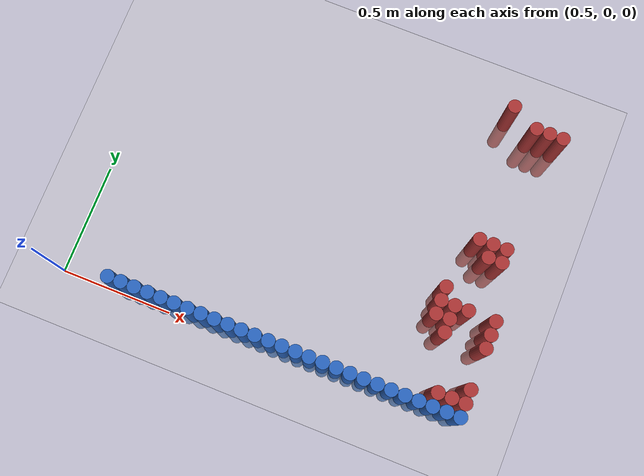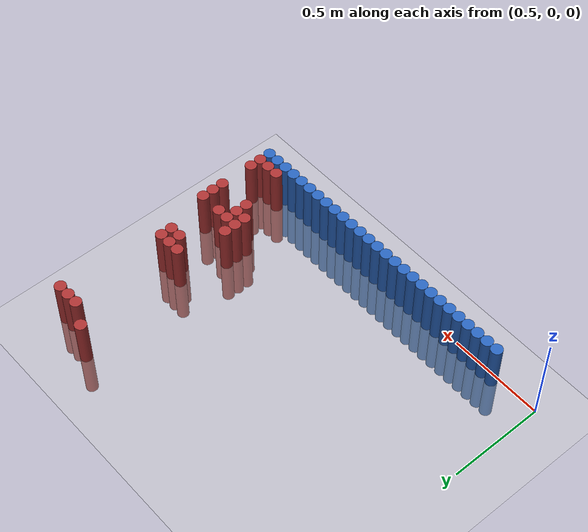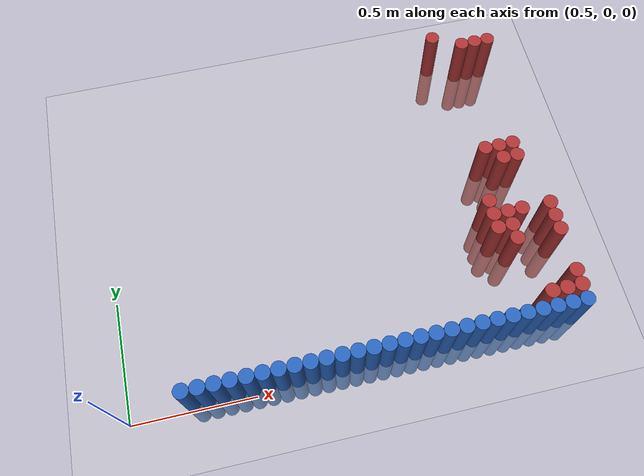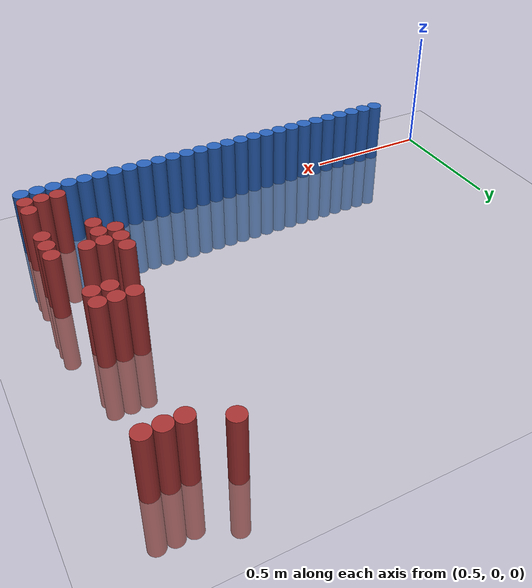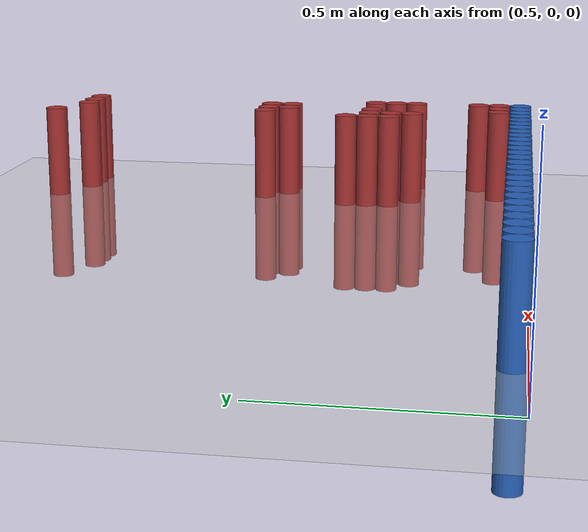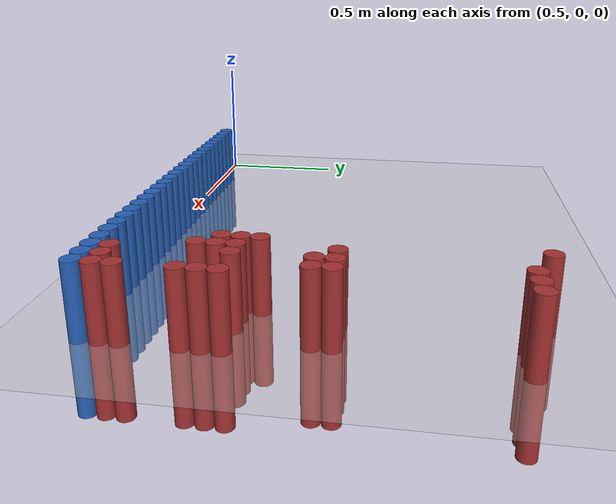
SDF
<sdf version="1.6">
 <world name="default">
  <model name="ground_plane">
   <static>1</static>
   <link name="link">
    <collision name="collision">
     <geometry><plane><normal>0 0 1</normal><size>100 100</size></plane></geometry>
     <surface><friction><ode><mu>100</mu><mu2>50</mu2></ode></friction></surface>
    </collision>
    <visual name="visual">
     <cast_shadows>0</cast_shadows>
     <geometry><plane><normal>0 0 1</normal><size>100 100</size></plane></geometry>
     <material>
      <script><uri>file://media/materials/scripts/gazebo.material</uri><name>Gazebo/Grey</name></script>
     </material>
    </visual>
   </link>
  </model>
  <model name="unit_cylinder_51">
   <static>1</static>
   <pose>0.750000 0.030000 0.000000 0.000000 0.000000 0.000000</pose>
   <link name="link">
    <inertial>
     <mass>1</mass>
     <inertia><ixx>0.145833</ixx><ixy>0</ixy><ixz>0</ixz><iyy>0.145833</iyy><iyz>0</iyz><izz>0.125</izz></inertia>
    </inertial>
    <collision name="collision">
     <geometry><cylinder><radius>0.030000</radius><length>0.5</length></cylinder></geometry>
    </collision>
    <visual name="visual">
     <geometry><cylinder><radius>0.030000</radius><length>0.5</length></cylinder></geometry>
     <material>
      <ambient>0.152000 0.379000 0.720000 1</ambient>
      <diffuse>0.152000 0.379000 0.720000 1</diffuse>
     </material>
     <material>
      <script><name>Gazebo/Grey</name><uri>file://media/materials/scripts/gazebo.material</uri></script>
     </material>
    </visual>
   </link>
  </model>
  <model name="unit_cylinder_53">
   <static>1</static>
   <pose>0.810000 0.030000 0.000000 0.000000 0.000000 0.000000</pose>
   <link name="link">
    <inertial>
     <mass>1</mass>
     <inertia><ixx>0.145833</ixx><ixy>0</ixy><ixz>0</ixz><iyy>0.145833</iyy><iyz>0</iyz><izz>0.125</izz></inertia>
    </inertial>
    <collision name="collision">
     <geometry><cylinder><radius>0.030000</radius><length>0.5</length></cylinder></geometry>
    </collision>
    <visual name="visual">
     <geometry><cylinder><radius>0.030000</radius><length>0.5</length></cylinder></geometry>
     <material>
      <ambient>0.152000 0.379000 0.720000 1</ambient>
      <diffuse>0.152000 0.379000 0.720000 1</diffuse>
     </material>
     <material>
      <script><name>Gazebo/Grey</name><uri>file://media/materials/scripts/gazebo.material</uri></script>
     </material>
    </visual>
   </link>
  </model>
  <model name="unit_cylinder_55">
   <static>1</static>
   <pose>0.870000 0.030000 0.000000 0.000000 0.000000 0.000000</pose>
   <link name="link">
    <inertial>
     <mass>1</mass>
     <inertia><ixx>0.145833</ixx><ixy>0</ixy><ixz>0</ixz><iyy>0.145833</iyy><iyz>0</iyz><izz>0.125</izz></inertia>
    </inertial>
    <collision name="collision">
     <geometry><cylinder><radius>0.030000</radius><length>0.5</length></cylinder></geometry>
    </collision>
    <visual name="visual">
     <geometry><cylinder><radius>0.030000</radius><length>0.5</length></cylinder></geometry>
     <material>
      <ambient>0.152000 0.379000 0.720000 1</ambient>
      <diffuse>0.152000 0.379000 0.720000 1</diffuse>
     </material>
     <material>
      <script><name>Gazebo/Grey</name><uri>file://media/materials/scripts/gazebo.material</uri></script>
     </material>
    </visual>
   </link>
  </model>
  <model name="unit_cylinder_57">
   <static>1</static>
   <pose>0.930000 0.030000 0.000000 0.000000 0.000000 0.000000</pose>
   <link name="link">
    <inertial>
     <mass>1</mass>
     <inertia><ixx>0.145833</ixx><ixy>0</ixy><ixz>0</ixz><iyy>0.145833</iyy><iyz>0</iyz><izz>0.125</izz></inertia>
    </inertial>
    <collision name="collision">
     <geometry><cylinder><radius>0.030000</radius><length>0.5</length></cylinder></geometry>
    </collision>
    <visual name="visual">
     <geometry><cylinder><radius>0.030000</radius><length>0.5</length></cylinder></geometry>
     <material>
      <ambient>0.152000 0.379000 0.720000 1</ambient>
      <diffuse>0.152000 0.379000 0.720000 1</diffuse>
     </material>
     <material>
      <script><name>Gazebo/Grey</name><uri>file://media/materials/scripts/gazebo.material</uri></script>
     </material>
    </visual>
   </link>
  </model>
  <model name="unit_cylinder_59">
   <static>1</static>
   <pose>0.990000 0.030000 0.000000 0.000000 0.000000 0.000000</pose>
   <link name="link">
    <inertial>
     <mass>1</mass>
     <inertia><ixx>0.145833</ixx><ixy>0</ixy><ixz>0</ixz><iyy>0.145833</iyy><iyz>0</iyz><izz>0.125</izz></inertia>
    </inertial>
    <collision name="collision">
     <geometry><cylinder><radius>0.030000</radius><length>0.5</length></cylinder></geometry>
    </collision>
    <visual name="visual">
     <geometry><cylinder><radius>0.030000</radius><length>0.5</length></cylinder></geometry>
     <material>
      <ambient>0.152000 0.379000 0.720000 1</ambient>
      <diffuse>0.152000 0.379000 0.720000 1</diffuse>
     </material>
     <material>
      <script><name>Gazebo/Grey</name><uri>file://media/materials/scripts/gazebo.material</uri></script>
     </material>
    </visual>
   </link>
  </model>
  <model name="unit_cylinder_61">
   <static>1</static>
   <pose>1.050000 0.030000 0.000000 0.000000 0.000000 0.000000</pose>
   <link name="link">
    <inertial>
     <mass>1</mass>
     <inertia><ixx>0.145833</ixx><ixy>0</ixy><ixz>0</ixz><iyy>0.145833</iyy><iyz>0</iyz><izz>0.125</izz></inertia>
    </inertial>
    <collision name="collision">
     <geometry><cylinder><radius>0.030000</radius><length>0.5</length></cylinder></geometry>
    </collision>
    <visual name="visual">
     <geometry><cylinder><radius>0.030000</radius><length>0.5</length></cylinder></geometry>
     <material>
      <ambient>0.152000 0.379000 0.720000 1</ambient>
      <diffuse>0.152000 0.379000 0.720000 1</diffuse>
     </material>
     <material>
      <script><name>Gazebo/Grey</name><uri>file://media/materials/scripts/gazebo.material</uri></script>
     </material>
    </visual>
   </link>
  </model>
  <model name="unit_cylinder_63">
   <static>1</static>
   <pose>1.110000 0.030000 0.000000 0.000000 0.000000 0.000000</pose>
   <link name="link">
    <inertial>
     <mass>1</mass>
     <inertia><ixx>0.145833</ixx><ixy>0</ixy><ixz>0</ixz><iyy>0.145833</iyy><iyz>0</iyz><izz>0.125</izz></inertia>
    </inertial>
    <collision name="collision">
     <geometry><cylinder><radius>0.030000</radius><length>0.5</length></cylinder></geometry>
    </collision>
    <visual name="visual">
     <geometry><cylinder><radius>0.030000</radius><length>0.5</length></cylinder></geometry>
     <material>
      <ambient>0.152000 0.379000 0.720000 1</ambient>
      <diffuse>0.152000 0.379000 0.720000 1</diffuse>
     </material>
     <material>
      <script><name>Gazebo/Grey</name><uri>file://media/materials/scripts/gazebo.material</uri></script>
     </material>
    </visual>
   </link>
  </model>
  <model name="unit_cylinder_65">
   <static>1</static>
   <pose>1.170000 0.030000 0.000000 0.000000 0.000000 0.000000</pose>
   <link name="link">
    <inertial>
     <mass>1</mass>
     <inertia><ixx>0.145833</ixx><ixy>0</ixy><ixz>0</ixz><iyy>0.145833</iyy><iyz>0</iyz><izz>0.125</izz></inertia>
    </inertial>
    <collision name="collision">
     <geometry><cylinder><radius>0.030000</radius><length>0.5</length></cylinder></geometry>
    </collision>
    <visual name="visual">
     <geometry><cylinder><radius>0.030000</radius><length>0.5</length></cylinder></geometry>
     <material>
      <ambient>0.152000 0.379000 0.720000 1</ambient>
      <diffuse>0.152000 0.379000 0.720000 1</diffuse>
     </material>
     <material>
      <script><name>Gazebo/Grey</name><uri>file://media/materials/scripts/gazebo.material</uri></script>
     </material>
    </visual>
   </link>
  </model>
  <model name="unit_cylinder_67">
   <static>1</static>
   <pose>1.230000 0.030000 0.000000 0.000000 0.000000 0.000000</pose>
   <link name="link">
    <inertial>
     <mass>1</mass>
     <inertia><ixx>0.145833</ixx><ixy>0</ixy><ixz>0</ixz><iyy>0.145833</iyy><iyz>0</iyz><izz>0.125</izz></inertia>
    </inertial>
    <collision name="collision">
     <geometry><cylinder><radius>0.030000</radius><length>0.5</length></cylinder></geometry>
    </collision>
    <visual name="visual">
     <geometry><cylinder><radius>0.030000</radius><length>0.5</length></cylinder></geometry>
     <material>
      <ambient>0.152000 0.379000 0.720000 1</ambient>
      <diffuse>0.152000 0.379000 0.720000 1</diffuse>
     </material>
     <material>
      <script><name>Gazebo/Grey</name><uri>file://media/materials/scripts/gazebo.material</uri></script>
     </material>
    </visual>
   </link>
  </model>
  <model name="unit_cylinder_69">
   <static>1</static>
   <pose>1.290000 0.030000 0.000000 0.000000 0.000000 0.000000</pose>
   <link name="link">
    <inertial>
     <mass>1</mass>
     <inertia><ixx>0.145833</ixx><ixy>0</ixy><ixz>0</ixz><iyy>0.145833</iyy><iyz>0</iyz><izz>0.125</izz></inertia>
    </inertial>
    <collision name="collision">
     <geometry><cylinder><radius>0.030000</radius><length>0.5</length></cylinder></geometry>
    </collision>
    <visual name="visual">
     <geometry><cylinder><radius>0.030000</radius><length>0.5</length></cylinder></geometry>
     <material>
      <ambient>0.152000 0.379000 0.720000 1</ambient>
      <diffuse>0.152000 0.379000 0.720000 1</diffuse>
     </material>
     <material>
      <script><name>Gazebo/Grey</name><uri>file://media/materials/scripts/gazebo.material</uri></script>
     </material>
    </visual>
   </link>
  </model>
  <model name="unit_cylinder_71">
   <static>1</static>
   <pose>1.350000 0.030000 0.000000 0.000000 0.000000 0.000000</pose>
   <link name="link">
    <inertial>
     <mass>1</mass>
     <inertia><ixx>0.145833</ixx><ixy>0</ixy><ixz>0</ixz><iyy>0.145833</iyy><iyz>0</iyz><izz>0.125</izz></inertia>
    </inertial>
    <collision name="collision">
     <geometry><cylinder><radius>0.030000</radius><length>0.5</length></cylinder></geometry>
    </collision>
    <visual name="visual">
     <geometry><cylinder><radius>0.030000</radius><length>0.5</length></cylinder></geometry>
     <material>
      <ambient>0.152000 0.379000 0.720000 1</ambient>
      <diffuse>0.152000 0.379000 0.720000 1</diffuse>
     </material>
     <material>
      <script><name>Gazebo/Grey</name><uri>file://media/materials/scripts/gazebo.material</uri></script>
     </material>
    </visual>
   </link>
  </model>
  <model name="unit_cylinder_73">
   <static>1</static>
   <pose>1.410000 0.030000 0.000000 0.000000 0.000000 0.000000</pose>
   <link name="link">
    <inertial>
     <mass>1</mass>
     <inertia><ixx>0.145833</ixx><ixy>0</ixy><ixz>0</ixz><iyy>0.145833</iyy><iyz>0</iyz><izz>0.125</izz></inertia>
    </inertial>
    <collision name="collision">
     <geometry><cylinder><radius>0.030000</radius><length>0.5</length></cylinder></geometry>
    </collision>
    <visual name="visual">
     <geometry><cylinder><radius>0.030000</radius><length>0.5</length></cylinder></geometry>
     <material>
      <ambient>0.152000 0.379000 0.720000 1</ambient>
      <diffuse>0.152000 0.379000 0.720000 1</diffuse>
     </material>
     <material>
      <script><name>Gazebo/Grey</name><uri>file://media/materials/scripts/gazebo.material</uri></script>
     </material>
    </visual>
   </link>
  </model>
  <model name="unit_cylinder_75">
   <static>1</static>
   <pose>1.470000 0.030000 0.000000 0.000000 0.000000 0.000000</pose>
   <link name="link">
    <inertial>
     <mass>1</mass>
     <inertia><ixx>0.145833</ixx><ixy>0</ixy><ixz>0</ixz><iyy>0.145833</iyy><iyz>0</iyz><izz>0.125</izz></inertia>
    </inertial>
    <collision name="collision">
     <geometry><cylinder><radius>0.030000</radius><length>0.5</length></cylinder></geometry>
    </collision>
    <visual name="visual">
     <geometry><cylinder><radius>0.030000</radius><length>0.5</length></cylinder></geometry>
     <material>
      <ambient>0.152000 0.379000 0.720000 1</ambient>
      <diffuse>0.152000 0.379000 0.720000 1</diffuse>
     </material>
     <material>
      <script><name>Gazebo/Grey</name><uri>file://media/materials/scripts/gazebo.material</uri></script>
     </material>
    </visual>
   </link>
  </model>
  <model name="unit_cylinder_77">
   <static>1</static>
   <pose>1.530000 0.030000 0.000000 0.000000 0.000000 0.000000</pose>
   <link name="link">
    <inertial>
     <mass>1</mass>
     <inertia><ixx>0.145833</ixx><ixy>0</ixy><ixz>0</ixz><iyy>0.145833</iyy><iyz>0</iyz><izz>0.125</izz></inertia>
    </inertial>
    <collision name="collision">
     <geometry><cylinder><radius>0.030000</radius><length>0.5</length></cylinder></geometry>
    </collision>
    <visual name="visual">
     <geometry><cylinder><radius>0.030000</radius><length>0.5</length></cylinder></geometry>
     <material>
      <ambient>0.152000 0.379000 0.720000 1</ambient>
      <diffuse>0.152000 0.379000 0.720000 1</diffuse>
     </material>
     <material>
      <script><name>Gazebo/Grey</name><uri>file://media/materials/scripts/gazebo.material</uri></script>
     </material>
    </visual>
   </link>
  </model>
  <model name="unit_cylinder_79">
   <static>1</static>
   <pose>1.590000 0.030000 0.000000 0.000000 0.000000 0.000000</pose>
   <link name="link">
    <inertial>
     <mass>1</mass>
     <inertia><ixx>0.145833</ixx><ixy>0</ixy><ixz>0</ixz><iyy>0.145833</iyy><iyz>0</iyz><izz>0.125</izz></inertia>
    </inertial>
    <collision name="collision">
     <geometry><cylinder><radius>0.030000</radius><length>0.5</length></cylinder></geometry>
    </collision>
    <visual name="visual">
     <geometry><cylinder><radius>0.030000</radius><length>0.5</length></cylinder></geometry>
     <material>
      <ambient>0.152000 0.379000 0.720000 1</ambient>
      <diffuse>0.152000 0.379000 0.720000 1</diffuse>
     </material>
     <material>
      <script><name>Gazebo/Grey</name><uri>file://media/materials/scripts/gazebo.material</uri></script>
     </material>
    </visual>
   </link>
  </model>
  <model name="unit_cylinder_81">
   <static>1</static>
   <pose>1.650000 0.030000 0.000000 0.000000 0.000000 0.000000</pose>
   <link name="link">
    <inertial>
     <mass>1</mass>
     <inertia><ixx>0.145833</ixx><ixy>0</ixy><ixz>0</ixz><iyy>0.145833</iyy><iyz>0</iyz><izz>0.125</izz></inertia>
    </inertial>
    <collision name="collision">
     <geometry><cylinder><radius>0.030000</radius><length>0.5</length></cylinder></geometry>
    </collision>
    <visual name="visual">
     <geometry><cylinder><radius>0.030000</radius><length>0.5</length></cylinder></geometry>
     <material>
      <ambient>0.152000 0.379000 0.720000 1</ambient>
      <diffuse>0.152000 0.379000 0.720000 1</diffuse>
     </material>
     <material>
      <script><name>Gazebo/Grey</name><uri>file://media/materials/scripts/gazebo.material</uri></script>
     </material>
    </visual>
   </link>
  </model>
  <model name="unit_cylinder_83">
   <static>1</static>
   <pose>1.710000 0.030000 0.000000 0.000000 0.000000 0.000000</pose>
   <link name="link">
    <inertial>
     <mass>1</mass>
     <inertia><ixx>0.145833</ixx><ixy>0</ixy><ixz>0</ixz><iyy>0.145833</iyy><iyz>0</iyz><izz>0.125</izz></inertia>
    </inertial>
    <collision name="collision">
     <geometry><cylinder><radius>0.030000</radius><length>0.5</length></cylinder></geometry>
    </collision>
    <visual name="visual">
     <geometry><cylinder><radius>0.030000</radius><length>0.5</length></cylinder></geometry>
     <material>
      <ambient>0.152000 0.379000 0.720000 1</ambient>
      <diffuse>0.152000 0.379000 0.720000 1</diffuse>
     </material>
     <material>
      <script><name>Gazebo/Grey</name><uri>file://media/materials/scripts/gazebo.material</uri></script>
     </material>
    </visual>
   </link>
  </model>
  <model name="unit_cylinder_85">
   <static>1</static>
   <pose>1.770000 0.030000 0.000000 0.000000 0.000000 0.000000</pose>
   <link name="link">
    <inertial>
     <mass>1</mass>
     <inertia><ixx>0.145833</ixx><ixy>0</ixy><ixz>0</ixz><iyy>0.145833</iyy><iyz>0</iyz><izz>0.125</izz></inertia>
    </inertial>
    <collision name="collision">
     <geometry><cylinder><radius>0.030000</radius><length>0.5</length></cylinder></geometry>
    </collision>
    <visual name="visual">
     <geometry><cylinder><radius>0.030000</radius><length>0.5</length></cylinder></geometry>
     <material>
      <ambient>0.152000 0.379000 0.720000 1</ambient>
      <diffuse>0.152000 0.379000 0.720000 1</diffuse>
     </material>
     <material>
      <script><name>Gazebo/Grey</name><uri>file://media/materials/scripts/gazebo.material</uri></script>
     </material>
    </visual>
   </link>
  </model>
  <model name="unit_cylinder_87">
   <static>1</static>
   <pose>1.830000 0.030000 0.000000 0.000000 0.000000 0.000000</pose>
   <link name="link">
    <inertial>
     <mass>1</mass>
     <inertia><ixx>0.145833</ixx><ixy>0</ixy><ixz>0</ixz><iyy>0.145833</iyy><iyz>0</iyz><izz>0.125</izz></inertia>
    </inertial>
    <collision name="collision">
     <geometry><cylinder><radius>0.030000</radius><length>0.5</length></cylinder></geometry>
    </collision>
    <visual name="visual">
     <geometry><cylinder><radius>0.030000</radius><length>0.5</length></cylinder></geometry>
     <material>
      <ambient>0.152000 0.379000 0.720000 1</ambient>
      <diffuse>0.152000 0.379000 0.720000 1</diffuse>
     </material>
     <material>
      <script><name>Gazebo/Grey</name><uri>file://media/materials/scripts/gazebo.material</uri></script>
     </material>
    </visual>
   </link>
  </model>
  <model name="unit_cylinder_89">
   <static>1</static>
   <pose>1.890000 0.030000 0.000000 0.000000 0.000000 0.000000</pose>
   <link name="link">
    <inertial>
     <mass>1</mass>
     <inertia><ixx>0.145833</ixx><ixy>0</ixy><ixz>0</ixz><iyy>0.145833</iyy><iyz>0</iyz><izz>0.125</izz></inertia>
    </inertial>
    <collision name="collision">
     <geometry><cylinder><radius>0.030000</radius><length>0.5</length></cylinder></geometry>
    </collision>
    <visual name="visual">
     <geometry><cylinder><radius>0.030000</radius><length>0.5</length></cylinder></geometry>
     <material>
      <ambient>0.152000 0.379000 0.720000 1</ambient>
      <diffuse>0.152000 0.379000 0.720000 1</diffuse>
     </material>
     <material>
      <script><name>Gazebo/Grey</name><uri>file://media/materials/scripts/gazebo.material</uri></script>
     </material>
    </visual>
   </link>
  </model>
  <model name="unit_cylinder_91">
   <static>1</static>
   <pose>1.950000 0.030000 0.000000 0.000000 0.000000 0.000000</pose>
   <link name="link">
    <inertial>
     <mass>1</mass>
     <inertia><ixx>0.145833</ixx><ixy>0</ixy><ixz>0</ixz><iyy>0.145833</iyy><iyz>0</iyz><izz>0.125</izz></inertia>
    </inertial>
    <collision name="collision">
     <geometry><cylinder><radius>0.030000</radius><length>0.5</length></cylinder></geometry>
    </collision>
    <visual name="visual">
     <geometry><cylinder><radius>0.030000</radius><length>0.5</length></cylinder></geometry>
     <material>
      <ambient>0.152000 0.379000 0.720000 1</ambient>
      <diffuse>0.152000 0.379000 0.720000 1</diffuse>
     </material>
     <material>
      <script><name>Gazebo/Grey</name><uri>file://media/materials/scripts/gazebo.material</uri></script>
     </material>
    </visual>
   </link>
  </model>
  <model name="unit_cylinder_93">
   <static>1</static>
   <pose>2.010000 0.030000 0.000000 0.000000 0.000000 0.000000</pose>
   <link name="link">
    <inertial>
     <mass>1</mass>
     <inertia><ixx>0.145833</ixx><ixy>0</ixy><ixz>0</ixz><iyy>0.145833</iyy><iyz>0</iyz><izz>0.125</izz></inertia>
    </inertial>
    <collision name="collision">
     <geometry><cylinder><radius>0.030000</radius><length>0.5</length></cylinder></geometry>
    </collision>
    <visual name="visual">
     <geometry><cylinder><radius>0.030000</radius><length>0.5</length></cylinder></geometry>
     <material>
      <ambient>0.152000 0.379000 0.720000 1</ambient>
      <diffuse>0.152000 0.379000 0.720000 1</diffuse>
     </material>
     <material>
      <script><name>Gazebo/Grey</name><uri>file://media/materials/scripts/gazebo.material</uri></script>
     </material>
    </visual>
   </link>
  </model>
  <model name="unit_cylinder_176">
   <static>1</static>
   <pose>2.070000 1.350000 0.000000 0.000000 0.000000 0.000000</pose>
   <link name="link">
    <inertial>
     <mass>1</mass>
     <inertia><ixx>0.145833</ixx><ixy>0</ixy><ixz>0</ixz><iyy>0.145833</iyy><iyz>0</iyz><izz>0.125</izz></inertia>
    </inertial>
    <collision name="collision">
     <geometry><cylinder><radius>0.030000</radius><length>0.5</length></cylinder></geometry>
    </collision>
    <visual name="visual">
     <geometry><cylinder><radius>0.030000</radius><length>0.5</length></cylinder></geometry>
     <material>
      <ambient>0.648000 0.192000 0.192000 1</ambient>
      <diffuse>0.648000 0.192000 0.192000 1</diffuse>
     </material>
     <material>
      <script><name>Gazebo/Grey</name><uri>file://media/materials/scripts/gazebo.material</uri></script>
     </material>
    </visual>
   </link>
  </model>
  <model name="unit_cylinder_181">
   <static>1</static>
   <pose>2.190000 1.290000 0.000000 0.000000 0.000000 0.000000</pose>
   <link name="link">
    <inertial>
     <mass>1</mass>
     <inertia><ixx>0.145833</ixx><ixy>0</ixy><ixz>0</ixz><iyy>0.145833</iyy><iyz>0</iyz><izz>0.125</izz></inertia>
    </inertial>
    <collision name="collision">
     <geometry><cylinder><radius>0.030000</radius><length>0.5</length></cylinder></geometry>
    </collision>
    <visual name="visual">
     <geometry><cylinder><radius>0.030000</radius><length>0.5</length></cylinder></geometry>
     <material>
      <ambient>0.648000 0.192000 0.192000 1</ambient>
      <diffuse>0.648000 0.192000 0.192000 1</diffuse>
     </material>
     <material>
      <script><name>Gazebo/Grey</name><uri>file://media/materials/scripts/gazebo.material</uri></script>
     </material>
    </visual>
   </link>
  </model>
  <model name="unit_cylinder_182">
   <static>1</static>
   <pose>2.250000 1.290000 0.000000 0.000000 0.000000 0.000000</pose>
   <link name="link">
    <inertial>
     <mass>1</mass>
     <inertia><ixx>0.145833</ixx><ixy>0</ixy><ixz>0</ixz><iyy>0.145833</iyy><iyz>0</iyz><izz>0.125</izz></inertia>
    </inertial>
    <collision name="collision">
     <geometry><cylinder><radius>0.030000</radius><length>0.5</length></cylinder></geometry>
    </collision>
    <visual name="visual">
     <geometry><cylinder><radius>0.030000</radius><length>0.5</length></cylinder></geometry>
     <material>
      <ambient>0.648000 0.192000 0.192000 1</ambient>
      <diffuse>0.648000 0.192000 0.192000 1</diffuse>
     </material>
     <material>
      <script><name>Gazebo/Grey</name><uri>file://media/materials/scripts/gazebo.material</uri></script>
     </material>
    </visual>
   </link>
  </model>
  <model name="unit_cylinder_183">
   <static>1</static>
   <pose>2.310000 1.290000 0.000000 0.000000 0.000000 0.000000</pose>
   <link name="link">
    <inertial>
     <mass>1</mass>
     <inertia><ixx>0.145833</ixx><ixy>0</ixy><ixz>0</ixz><iyy>0.145833</iyy><iyz>0</iyz><izz>0.125</izz></inertia>
    </inertial>
    <collision name="collision">
     <geometry><cylinder><radius>0.030000</radius><length>0.5</length></cylinder></geometry>
    </collision>
    <visual name="visual">
     <geometry><cylinder><radius>0.030000</radius><length>0.5</length></cylinder></geometry>
     <material>
      <ambient>0.648000 0.192000 0.192000 1</ambient>
      <diffuse>0.648000 0.192000 0.192000 1</diffuse>
     </material>
     <material>
      <script><name>Gazebo/Grey</name><uri>file://media/materials/scripts/gazebo.material</uri></script>
     </material>
    </visual>
   </link>
  </model>
  <model name="unit_cylinder_228">
   <static>1</static>
   <pose>2.130000 0.750000 0.000000 0.000000 0.000000 0.000000</pose>
   <link name="link">
    <inertial>
     <mass>1</mass>
     <inertia><ixx>0.145833</ixx><ixy>0</ixy><ixz>0</ixz><iyy>0.145833</iyy><iyz>0</iyz><izz>0.125</izz></inertia>
    </inertial>
    <collision name="collision">
     <geometry><cylinder><radius>0.030000</radius><length>0.5</length></cylinder></geometry>
    </collision>
    <visual name="visual">
     <geometry><cylinder><radius>0.030000</radius><length>0.5</length></cylinder></geometry>
     <material>
      <ambient>0.648000 0.192000 0.192000 1</ambient>
      <diffuse>0.648000 0.192000 0.192000 1</diffuse>
     </material>
     <material>
      <script><name>Gazebo/Grey</name><uri>file://media/materials/scripts/gazebo.material</uri></script>
     </material>
    </visual>
   </link>
  </model>
  <model name="unit_cylinder_229">
   <static>1</static>
   <pose>2.190000 0.750000 0.000000 0.000000 0.000000 0.000000</pose>
   <link name="link">
    <inertial>
     <mass>1</mass>
     <inertia><ixx>0.145833</ixx><ixy>0</ixy><ixz>0</ixz><iyy>0.145833</iyy><iyz>0</iyz><izz>0.125</izz></inertia>
    </inertial>
    <collision name="collision">
     <geometry><cylinder><radius>0.030000</radius><length>0.5</length></cylinder></geometry>
    </collision>
    <visual name="visual">
     <geometry><cylinder><radius>0.030000</radius><length>0.5</length></cylinder></geometry>
     <material>
      <ambient>0.648000 0.192000 0.192000 1</ambient>
      <diffuse>0.648000 0.192000 0.192000 1</diffuse>
     </material>
     <material>
      <script><name>Gazebo/Grey</name><uri>file://media/materials/scripts/gazebo.material</uri></script>
     </material>
    </visual>
   </link>
  </model>
  <model name="unit_cylinder_230">
   <static>1</static>
   <pose>2.250000 0.750000 0.000000 0.000000 0.000000 0.000000</pose>
   <link name="link">
    <inertial>
     <mass>1</mass>
     <inertia><ixx>0.145833</ixx><ixy>0</ixy><ixz>0</ixz><iyy>0.145833</iyy><iyz>0</iyz><izz>0.125</izz></inertia>
    </inertial>
    <collision name="collision">
     <geometry><cylinder><radius>0.030000</radius><length>0.5</length></cylinder></geometry>
    </collision>
    <visual name="visual">
     <geometry><cylinder><radius>0.030000</radius><length>0.5</length></cylinder></geometry>
     <material>
      <ambient>0.648000 0.192000 0.192000 1</ambient>
      <diffuse>0.648000 0.192000 0.192000 1</diffuse>
     </material>
     <material>
      <script><name>Gazebo/Grey</name><uri>file://media/materials/scripts/gazebo.material</uri></script>
     </material>
    </visual>
   </link>
  </model>
  <model name="unit_cylinder_241">
   <static>1</static>
   <pose>2.190000 0.690000 0.000000 0.000000 0.000000 0.000000</pose>
   <link name="link">
    <inertial>
     <mass>1</mass>
     <inertia><ixx>0.145833</ixx><ixy>0</ixy><ixz>0</ixz><iyy>0.145833</iyy><iyz>0</iyz><izz>0.125</izz></inertia>
    </inertial>
    <collision name="collision">
     <geometry><cylinder><radius>0.030000</radius><length>0.5</length></cylinder></geometry>
    </collision>
    <visual name="visual">
     <geometry><cylinder><radius>0.030000</radius><length>0.5</length></cylinder></geometry>
     <material>
      <ambient>0.648000 0.192000 0.192000 1</ambient>
      <diffuse>0.648000 0.192000 0.192000 1</diffuse>
     </material>
     <material>
      <script><name>Gazebo/Grey</name><uri>file://media/materials/scripts/gazebo.material</uri></script>
     </material>
    </visual>
   </link>
  </model>
  <model name="unit_cylinder_242">
   <static>1</static>
   <pose>2.250000 0.690000 0.000000 0.000000 0.000000 0.000000</pose>
   <link name="link">
    <inertial>
     <mass>1</mass>
     <inertia><ixx>0.145833</ixx><ixy>0</ixy><ixz>0</ixz><iyy>0.145833</iyy><iyz>0</iyz><izz>0.125</izz></inertia>
    </inertial>
    <collision name="collision">
     <geometry><cylinder><radius>0.030000</radius><length>0.5</length></cylinder></geometry>
    </collision>
    <visual name="visual">
     <geometry><cylinder><radius>0.030000</radius><length>0.5</length></cylinder></geometry>
     <material>
      <ambient>0.648000 0.192000 0.192000 1</ambient>
      <diffuse>0.648000 0.192000 0.192000 1</diffuse>
     </material>
     <material>
      <script><name>Gazebo/Grey</name><uri>file://media/materials/scripts/gazebo.material</uri></script>
     </material>
    </visual>
   </link>
  </model>
  <model name="unit_cylinder_254">
   <static>1</static>
   <pose>2.070000 0.510000 0.000000 0.000000 0.000000 0.000000</pose>
   <link name="link">
    <inertial>
     <mass>1</mass>
     <inertia><ixx>0.145833</ixx><ixy>0</ixy><ixz>0</ixz><iyy>0.145833</iyy><iyz>0</iyz><izz>0.125</izz></inertia>
    </inertial>
    <collision name="collision">
     <geometry><cylinder><radius>0.030000</radius><length>0.5</length></cylinder></geometry>
    </collision>
    <visual name="visual">
     <geometry><cylinder><radius>0.030000</radius><length>0.5</length></cylinder></geometry>
     <material>
      <ambient>0.648000 0.192000 0.192000 1</ambient>
      <diffuse>0.648000 0.192000 0.192000 1</diffuse>
     </material>
     <material>
      <script><name>Gazebo/Grey</name><uri>file://media/materials/scripts/gazebo.material</uri></script>
     </material>
    </visual>
   </link>
  </model>
  <model name="unit_cylinder_255">
   <static>1</static>
   <pose>2.070000 0.450000 0.000000 0.000000 0.000000 0.000000</pose>
   <link name="link">
    <inertial>
     <mass>1</mass>
     <inertia><ixx>0.145833</ixx><ixy>0</ixy><ixz>0</ixz><iyy>0.145833</iyy><iyz>0</iyz><izz>0.125</izz></inertia>
    </inertial>
    <collision name="collision">
     <geometry><cylinder><radius>0.030000</radius><length>0.5</length></cylinder></geometry>
    </collision>
    <visual name="visual">
     <geometry><cylinder><radius>0.030000</radius><length>0.5</length></cylinder></geometry>
     <material>
      <ambient>0.648000 0.192000 0.192000 1</ambient>
      <diffuse>0.648000 0.192000 0.192000 1</diffuse>
     </material>
     <material>
      <script><name>Gazebo/Grey</name><uri>file://media/materials/scripts/gazebo.material</uri></script>
     </material>
    </visual>
   </link>
  </model>
  <model name="unit_cylinder_256">
   <static>1</static>
   <pose>2.130000 0.450000 0.000000 0.000000 0.000000 0.000000</pose>
   <link name="link">
    <inertial>
     <mass>1</mass>
     <inertia><ixx>0.145833</ixx><ixy>0</ixy><ixz>0</ixz><iyy>0.145833</iyy><iyz>0</iyz><izz>0.125</izz></inertia>
    </inertial>
    <collision name="collision">
     <geometry><cylinder><radius>0.030000</radius><length>0.5</length></cylinder></geometry>
    </collision>
    <visual name="visual">
     <geometry><cylinder><radius>0.030000</radius><length>0.5</length></cylinder></geometry>
     <material>
      <ambient>0.648000 0.192000 0.192000 1</ambient>
      <diffuse>0.648000 0.192000 0.192000 1</diffuse>
     </material>
     <material>
      <script><name>Gazebo/Grey</name><uri>file://media/materials/scripts/gazebo.material</uri></script>
     </material>
    </visual>
   </link>
  </model>
  <model name="unit_cylinder_257">
   <static>1</static>
   <pose>2.190000 0.450000 0.000000 0.000000 0.000000 0.000000</pose>
   <link name="link">
    <inertial>
     <mass>1</mass>
     <inertia><ixx>0.145833</ixx><ixy>0</ixy><ixz>0</ixz><iyy>0.145833</iyy><iyz>0</iyz><izz>0.125</izz></inertia>
    </inertial>
    <collision name="collision">
     <geometry><cylinder><radius>0.030000</radius><length>0.5</length></cylinder></geometry>
    </collision>
    <visual name="visual">
     <geometry><cylinder><radius>0.030000</radius><length>0.5</length></cylinder></geometry>
     <material>
      <ambient>0.648000 0.192000 0.192000 1</ambient>
      <diffuse>0.648000 0.192000 0.192000 1</diffuse>
     </material>
     <material>
      <script><name>Gazebo/Grey</name><uri>file://media/materials/scripts/gazebo.material</uri></script>
     </material>
    </visual>
   </link>
  </model>
  <model name="unit_cylinder_258">
   <static>1</static>
   <pose>2.310000 0.450000 0.000000 0.000000 0.000000 0.000000</pose>
   <link name="link">
    <inertial>
     <mass>1</mass>
     <inertia><ixx>0.145833</ixx><ixy>0</ixy><ixz>0</ixz><iyy>0.145833</iyy><iyz>0</iyz><izz>0.125</izz></inertia>
    </inertial>
    <collision name="collision">
     <geometry><cylinder><radius>0.030000</radius><length>0.5</length></cylinder></geometry>
    </collision>
    <visual name="visual">
     <geometry><cylinder><radius>0.030000</radius><length>0.5</length></cylinder></geometry>
     <material>
      <ambient>0.648000 0.192000 0.192000 1</ambient>
      <diffuse>0.648000 0.192000 0.192000 1</diffuse>
     </material>
     <material>
      <script><name>Gazebo/Grey</name><uri>file://media/materials/scripts/gazebo.material</uri></script>
     </material>
    </visual>
   </link>
  </model>
  <model name="unit_cylinder_262">
   <static>1</static>
   <pose>2.070000 0.390000 0.000000 0.000000 0.000000 0.000000</pose>
   <link name="link">
    <inertial>
     <mass>1</mass>
     <inertia><ixx>0.145833</ixx><ixy>0</ixy><ixz>0</ixz><iyy>0.145833</iyy><iyz>0</iyz><izz>0.125</izz></inertia>
    </inertial>
    <collision name="collision">
     <geometry><cylinder><radius>0.030000</radius><length>0.5</length></cylinder></geometry>
    </collision>
    <visual name="visual">
     <geometry><cylinder><radius>0.030000</radius><length>0.5</length></cylinder></geometry>
     <material>
      <ambient>0.648000 0.192000 0.192000 1</ambient>
      <diffuse>0.648000 0.192000 0.192000 1</diffuse>
     </material>
     <material>
      <script><name>Gazebo/Grey</name><uri>file://media/materials/scripts/gazebo.material</uri></script>
     </material>
    </visual>
   </link>
  </model>
  <model name="unit_cylinder_263">
   <static>1</static>
   <pose>2.130000 0.390000 0.000000 0.000000 0.000000 0.000000</pose>
   <link name="link">
    <inertial>
     <mass>1</mass>
     <inertia><ixx>0.145833</ixx><ixy>0</ixy><ixz>0</ixz><iyy>0.145833</iyy><iyz>0</iyz><izz>0.125</izz></inertia>
    </inertial>
    <collision name="collision">
     <geometry><cylinder><radius>0.030000</radius><length>0.5</length></cylinder></geometry>
    </collision>
    <visual name="visual">
     <geometry><cylinder><radius>0.030000</radius><length>0.5</length></cylinder></geometry>
     <material>
      <ambient>0.648000 0.192000 0.192000 1</ambient>
      <diffuse>0.648000 0.192000 0.192000 1</diffuse>
     </material>
     <material>
      <script><name>Gazebo/Grey</name><uri>file://media/materials/scripts/gazebo.material</uri></script>
     </material>
    </visual>
   </link>
  </model>
  <model name="unit_cylinder_264">
   <static>1</static>
   <pose>2.310000 0.390000 0.000000 0.000000 0.000000 0.000000</pose>
   <link name="link">
    <inertial>
     <mass>1</mass>
     <inertia><ixx>0.145833</ixx><ixy>0</ixy><ixz>0</ixz><iyy>0.145833</iyy><iyz>0</iyz><izz>0.125</izz></inertia>
    </inertial>
    <collision name="collision">
     <geometry><cylinder><radius>0.030000</radius><length>0.5</length></cylinder></geometry>
    </collision>
    <visual name="visual">
     <geometry><cylinder><radius>0.030000</radius><length>0.5</length></cylinder></geometry>
     <material>
      <ambient>0.648000 0.192000 0.192000 1</ambient>
      <diffuse>0.648000 0.192000 0.192000 1</diffuse>
     </material>
     <material>
      <script><name>Gazebo/Grey</name><uri>file://media/materials/scripts/gazebo.material</uri></script>
     </material>
    </visual>
   </link>
  </model>
  <model name="unit_cylinder_269">
   <static>1</static>
   <pose>2.130000 0.330000 0.000000 0.000000 0.000000 0.000000</pose>
   <link name="link">
    <inertial>
     <mass>1</mass>
     <inertia><ixx>0.145833</ixx><ixy>0</ixy><ixz>0</ixz><iyy>0.145833</iyy><iyz>0</iyz><izz>0.125</izz></inertia>
    </inertial>
    <collision name="collision">
     <geometry><cylinder><radius>0.030000</radius><length>0.5</length></cylinder></geometry>
    </collision>
    <visual name="visual">
     <geometry><cylinder><radius>0.030000</radius><length>0.5</length></cylinder></geometry>
     <material>
      <ambient>0.648000 0.192000 0.192000 1</ambient>
      <diffuse>0.648000 0.192000 0.192000 1</diffuse>
     </material>
     <material>
      <script><name>Gazebo/Grey</name><uri>file://media/materials/scripts/gazebo.material</uri></script>
     </material>
    </visual>
   </link>
  </model>
  <model name="unit_cylinder_270">
   <static>1</static>
   <pose>2.310000 0.330000 0.000000 0.000000 0.000000 0.000000</pose>
   <link name="link">
    <inertial>
     <mass>1</mass>
     <inertia><ixx>0.145833</ixx><ixy>0</ixy><ixz>0</ixz><iyy>0.145833</iyy><iyz>0</iyz><izz>0.125</izz></inertia>
    </inertial>
    <collision name="collision">
     <geometry><cylinder><radius>0.030000</radius><length>0.5</length></cylinder></geometry>
    </collision>
    <visual name="visual">
     <geometry><cylinder><radius>0.030000</radius><length>0.5</length></cylinder></geometry>
     <material>
      <ambient>0.648000 0.192000 0.192000 1</ambient>
      <diffuse>0.648000 0.192000 0.192000 1</diffuse>
     </material>
     <material>
      <script><name>Gazebo/Grey</name><uri>file://media/materials/scripts/gazebo.material</uri></script>
     </material>
    </visual>
   </link>
  </model>
  <model name="unit_cylinder_292">
   <static>1</static>
   <pose>2.310000 0.150000 0.000000 0.000000 0.000000 0.000000</pose>
   <link name="link">
    <inertial>
     <mass>1</mass>
     <inertia><ixx>0.145833</ixx><ixy>0</ixy><ixz>0</ixz><iyy>0.145833</iyy><iyz>0</iyz><izz>0.125</izz></inertia>
    </inertial>
    <collision name="collision">
     <geometry><cylinder><radius>0.030000</radius><length>0.5</length></cylinder></geometry>
    </collision>
    <visual name="visual">
     <geometry><cylinder><radius>0.030000</radius><length>0.5</length></cylinder></geometry>
     <material>
      <ambient>0.648000 0.192000 0.192000 1</ambient>
      <diffuse>0.648000 0.192000 0.192000 1</diffuse>
     </material>
     <material>
      <script><name>Gazebo/Grey</name><uri>file://media/materials/scripts/gazebo.material</uri></script>
     </material>
    </visual>
   </link>
  </model>
  <model name="unit_cylinder_304">
   <static>1</static>
   <pose>2.190000 0.090000 0.000000 0.000000 0.000000 0.000000</pose>
   <link name="link">
    <inertial>
     <mass>1</mass>
     <inertia><ixx>0.145833</ixx><ixy>0</ixy><ixz>0</ixz><iyy>0.145833</iyy><iyz>0</iyz><izz>0.125</izz></inertia>
    </inertial>
    <collision name="collision">
     <geometry><cylinder><radius>0.030000</radius><length>0.5</length></cylinder></geometry>
    </collision>
    <visual name="visual">
     <geometry><cylinder><radius>0.030000</radius><length>0.5</length></cylinder></geometry>
     <material>
      <ambient>0.648000 0.192000 0.192000 1</ambient>
      <diffuse>0.648000 0.192000 0.192000 1</diffuse>
     </material>
     <material>
      <script><name>Gazebo/Grey</name><uri>file://media/materials/scripts/gazebo.material</uri></script>
     </material>
    </visual>
   </link>
  </model>
  <model name="unit_cylinder_305">
   <static>1</static>
   <pose>2.250000 0.090000 0.000000 0.000000 0.000000 0.000000</pose>
   <link name="link">
    <inertial>
     <mass>1</mass>
     <inertia><ixx>0.145833</ixx><ixy>0</ixy><ixz>0</ixz><iyy>0.145833</iyy><iyz>0</iyz><izz>0.125</izz></inertia>
    </inertial>
    <collision name="collision">
     <geometry><cylinder><radius>0.030000</radius><length>0.5</length></cylinder></geometry>
    </collision>
    <visual name="visual">
     <geometry><cylinder><radius>0.030000</radius><length>0.5</length></cylinder></geometry>
     <material>
      <ambient>0.648000 0.192000 0.192000 1</ambient>
      <diffuse>0.648000 0.192000 0.192000 1</diffuse>
     </material>
     <material>
      <script><name>Gazebo/Grey</name><uri>file://media/materials/scripts/gazebo.material</uri></script>
     </material>
    </visual>
   </link>
  </model>
  <model name="unit_cylinder_306">
   <static>1</static>
   <pose>2.310000 0.090000 0.000000 0.000000 0.000000 0.000000</pose>
   <link name="link">
    <inertial>
     <mass>1</mass>
     <inertia><ixx>0.145833</ixx><ixy>0</ixy><ixz>0</ixz><iyy>0.145833</iyy><iyz>0</iyz><izz>0.125</izz></inertia>
    </inertial>
    <collision name="collision">
     <geometry><cylinder><radius>0.030000</radius><length>0.5</length></cylinder></geometry>
    </collision>
    <visual name="visual">
     <geometry><cylinder><radius>0.030000</radius><length>0.5</length></cylinder></geometry>
     <material>
      <ambient>0.648000 0.192000 0.192000 1</ambient>
      <diffuse>0.648000 0.192000 0.192000 1</diffuse>
     </material>
     <material>
      <script><name>Gazebo/Grey</name><uri>file://media/materials/scripts/gazebo.material</uri></script>
     </material>
    </visual>
   </link>
  </model>
  <model name="unit_cylinder_319">
   <static>1</static>
   <pose>2.070000 0.030000 0.000000 0.000000 0.000000 0.000000</pose>
   <link name="link">
    <inertial>
     <mass>1</mass>
     <inertia><ixx>0.145833</ixx><ixy>0</ixy><ixz>0</ixz><iyy>0.145833</iyy><iyz>0</iyz><izz>0.125</izz></inertia>
    </inertial>
    <collision name="collision">
     <geometry><cylinder><radius>0.030000</radius><length>0.5</length></cylinder></geometry>
    </collision>
    <visual name="visual">
     <geometry><cylinder><radius>0.030000</radius><length>0.5</length></cylinder></geometry>
     <material>
      <ambient>0.152000 0.379000 0.720000 1</ambient>
      <diffuse>0.152000 0.379000 0.720000 1</diffuse>
     </material>
     <material>
      <script><name>Gazebo/Grey</name><uri>file://media/materials/scripts/gazebo.material</uri></script>
     </material>
    </visual>
   </link>
  </model>
  <model name="unit_cylinder_320">
   <static>1</static>
   <pose>2.130000 0.030000 0.000000 0.000000 0.000000 0.000000</pose>
   <link name="link">
    <inertial>
     <mass>1</mass>
     <inertia><ixx>0.145833</ixx><ixy>0</ixy><ixz>0</ixz><iyy>0.145833</iyy><iyz>0</iyz><izz>0.125</izz></inertia>
    </inertial>
    <collision name="collision">
     <geometry><cylinder><radius>0.030000</radius><length>0.5</length></cylinder></geometry>
    </collision>
    <visual name="visual">
     <geometry><cylinder><radius>0.030000</radius><length>0.5</length></cylinder></geometry>
     <material>
      <ambient>0.152000 0.379000 0.720000 1</ambient>
      <diffuse>0.152000 0.379000 0.720000 1</diffuse>
     </material>
     <material>
      <script><name>Gazebo/Grey</name><uri>file://media/materials/scripts/gazebo.material</uri></script>
     </material>
    </visual>
   </link>
  </model>
  <model name="unit_cylinder_321">
   <static>1</static>
   <pose>2.190000 0.030000 0.000000 0.000000 0.000000 0.000000</pose>
   <link name="link">
    <inertial>
     <mass>1</mass>
     <inertia><ixx>0.145833</ixx><ixy>0</ixy><ixz>0</ixz><iyy>0.145833</iyy><iyz>0</iyz><izz>0.125</izz></inertia>
    </inertial>
    <collision name="collision">
     <geometry><cylinder><radius>0.030000</radius><length>0.5</length></cylinder></geometry>
    </collision>
    <visual name="visual">
     <geometry><cylinder><radius>0.030000</radius><length>0.5</length></cylinder></geometry>
     <material>
      <ambient>0.152000 0.379000 0.720000 1</ambient>
      <diffuse>0.152000 0.379000 0.720000 1</diffuse>
     </material>
     <material>
      <script><name>Gazebo/Grey</name><uri>file://media/materials/scripts/gazebo.material</uri></script>
     </material>
    </visual>
   </link>
  </model>
  <model name="unit_cylinder_322">
   <static>1</static>
   <pose>2.250000 0.030000 0.000000 0.000000 0.000000 0.000000</pose>
   <link name="link">
    <inertial>
     <mass>1</mass>
     <inertia><ixx>0.145833</ixx><ixy>0</ixy><ixz>0</ixz><iyy>0.145833</iyy><iyz>0</iyz><izz>0.125</izz></inertia>
    </inertial>
    <collision name="collision">
     <geometry><cylinder><radius>0.030000</radius><length>0.5</length></cylinder></geometry>
    </collision>
    <visual name="visual">
     <geometry><cylinder><radius>0.030000</radius><length>0.5</length></cylinder></geometry>
     <material>
      <ambient>0.152000 0.379000 0.720000 1</ambient>
      <diffuse>0.152000 0.379000 0.720000 1</diffuse>
     </material>
     <material>
      <script><name>Gazebo/Grey</name><uri>file://media/materials/scripts/gazebo.material</uri></script>
     </material>
    </visual>
   </link>
  </model>
  <model name="unit_cylinder_323">
   <static>1</static>
   <pose>2.310000 0.030000 0.000000 0.000000 0.000000 0.000000</pose>
   <link name="link">
    <inertial>
     <mass>1</mass>
     <inertia><ixx>0.145833</ixx><ixy>0</ixy><ixz>0</ixz><iyy>0.145833</iyy><iyz>0</iyz><izz>0.125</izz></inertia>
    </inertial>
    <collision name="collision">
     <geometry><cylinder><radius>0.030000</radius><length>0.5</length></cylinder></geometry>
    </collision>
    <visual name="visual">
     <geometry><cylinder><radius>0.030000</radius><length>0.5</length></cylinder></geometry>
     <material>
      <ambient>0.152000 0.379000 0.720000 1</ambient>
      <diffuse>0.152000 0.379000 0.720000 1</diffuse>
     </material>
     <material>
      <script><name>Gazebo/Grey</name><uri>file://media/materials/scripts/gazebo.material</uri></script>
     </material>
    </visual>
   </link>
  </model>
 </world>
</sdf>
